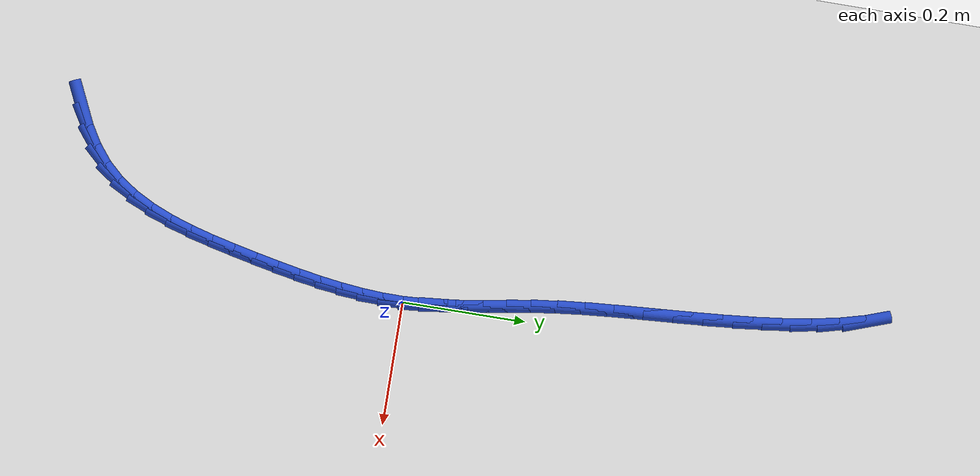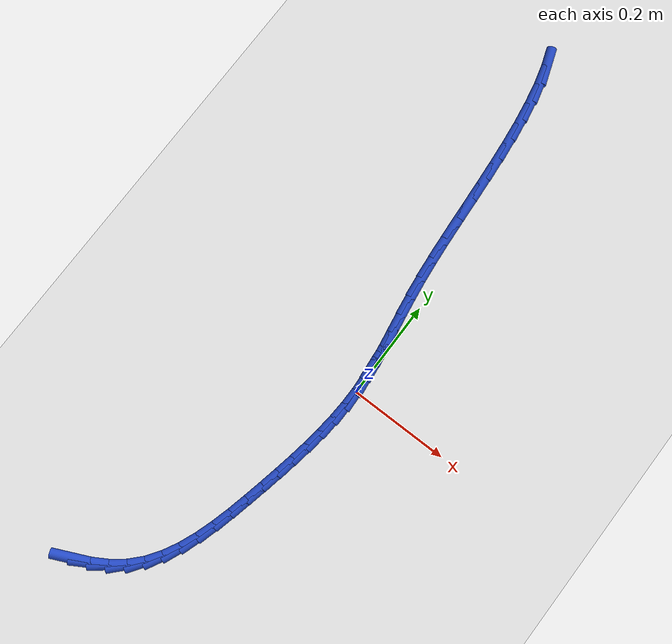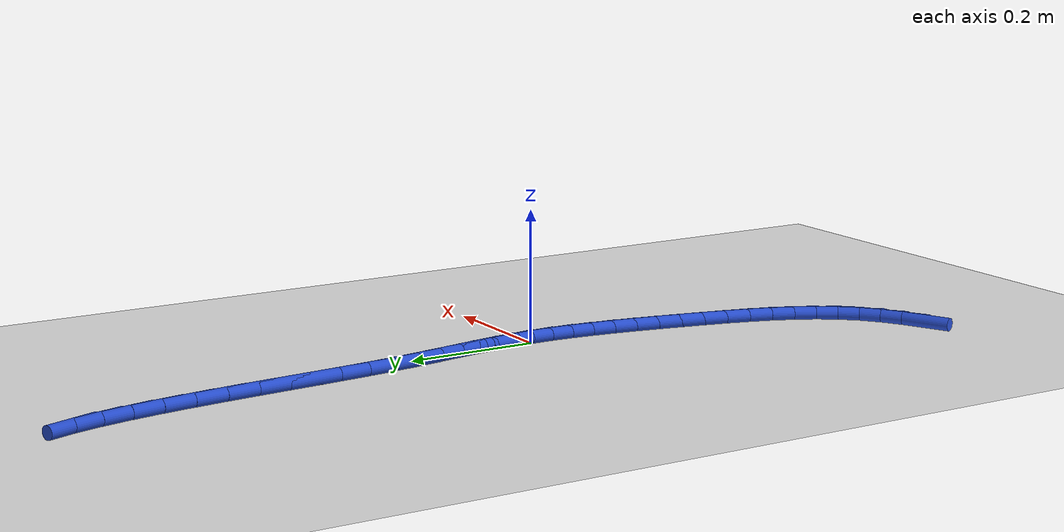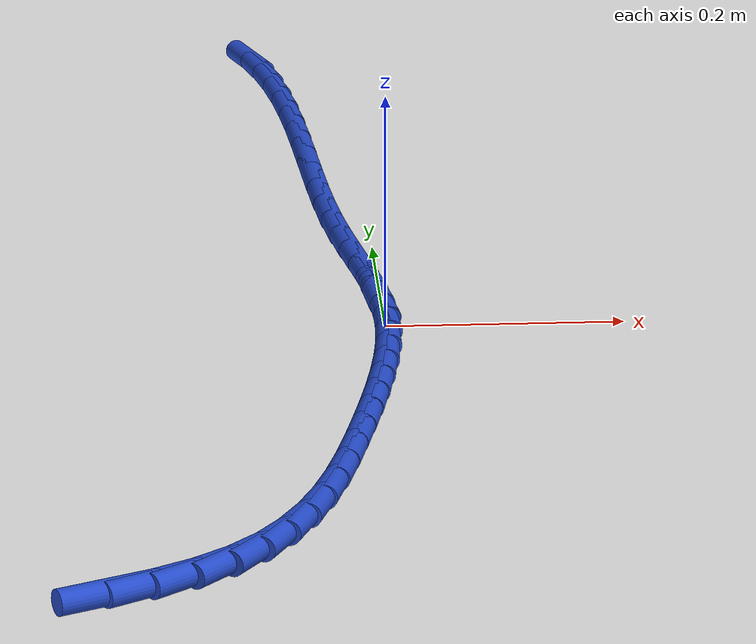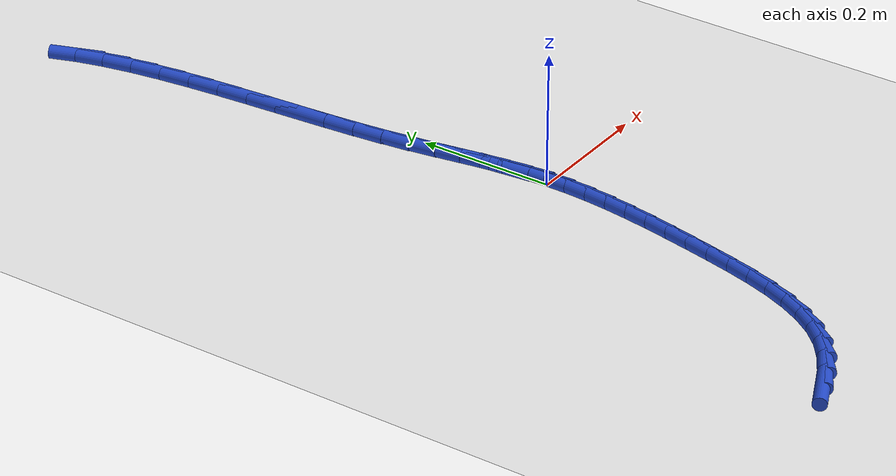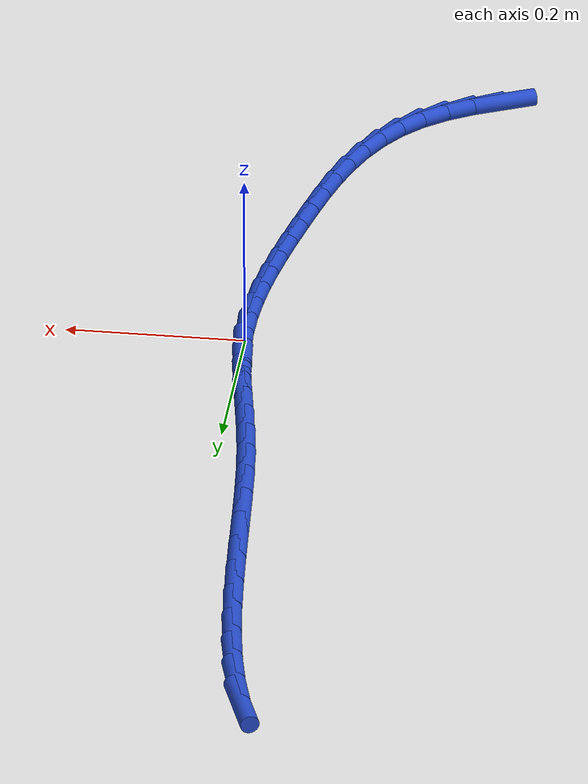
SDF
<sdf version="1.6">
 <world name="default">
  <model name="ground_plane">
   <static>1</static>
   <link name="link">
    <collision name="collision">
     <geometry><plane><normal>0 0 1</normal><size>100 100</size></plane></geometry>
     <surface><friction><ode><mu>100</mu><mu2>50</mu2></ode></friction></surface>
    </collision>
    <visual name="visual">
     <cast_shadows>0</cast_shadows>
     <geometry><plane><normal>0 0 1</normal><size>100 100</size></plane></geometry>
     <material>
      <script><uri>file://media/materials/scripts/gazebo.material</uri><name>Gazebo/WhiteGlow</name></script>
     </material>
    </visual>
   </link>
  </model>
  <model name="line">
   <link name="link_0">
    <pose>-6.938893903907228e-18 -6.938893903907228e-18 0.01 0 1.57 -1.5177969612141762</pose>
    <collision name="collision">
     <geometry><cylinder><radius>0.01</radius><length>0.08</length></cylinder></geometry>
    </collision>
    <visual name="visual">
     <material>
      <script><name>Gazebo/Blue</name><uri>file://media/materials/scripts/gazebo.material</uri></script>
     </material>
     <geometry><cylinder><radius>0.01</radius><length>0.08</length></cylinder></geometry>
    </visual>
   </link>
   <link name="link_1">
    <pose>-0.0017515799302486427 0.0330181235278298 0.01 0 1.57 -1.4679844494604115</pose>
    <collision name="collision">
     <geometry><cylinder><radius>0.01</radius><length>0.08</length></cylinder></geometry>
    </collision>
    <visual name="visual">
     <material>
      <script><name>Gazebo/Blue</name><uri>file://media/materials/scripts/gazebo.material</uri></script>
     </material>
     <geometry><cylinder><radius>0.01</radius><length>0.08</length></cylinder></geometry>
    </visual>
   </link>
   <link name="link_2">
    <pose>-0.005141537717968325 0.06587429909623252 0.01 0 1.57 -1.4324427644684208</pose>
    <collision name="collision">
     <geometry><cylinder><radius>0.01</radius><length>0.08</length></cylinder></geometry>
    </collision>
    <visual name="visual">
     <material>
      <script><name>Gazebo/Blue</name><uri>file://media/materials/scripts/gazebo.material</uri></script>
     </material>
     <geometry><cylinder><radius>0.01</radius><length>0.08</length></cylinder></geometry>
    </visual>
   </link>
   <link name="link_3">
    <pose>-0.009760357688056033 0.09904519484243182 0.01 0 1.57 -1.4120204576833575</pose>
    <collision name="collision">
     <geometry><cylinder><radius>0.01</radius><length>0.08</length></cylinder></geometry>
    </collision>
    <visual name="visual">
     <material>
      <script><name>Gazebo/Blue</name><uri>file://media/materials/scripts/gazebo.material</uri></script>
     </material>
     <geometry><cylinder><radius>0.01</radius><length>0.08</length></cylinder></geometry>
    </visual>
   </link>
   <link name="link_4">
    <pose>-0.015198524165408756 0.1330074789036513 0.01 0 1.57 -1.4063029760364756</pose>
    <collision name="collision">
     <geometry><cylinder><radius>0.01</radius><length>0.08</length></cylinder></geometry>
    </collision>
    <visual name="visual">
     <material>
      <script><name>Gazebo/Blue</name><uri>file://media/materials/scripts/gazebo.material</uri></script>
     </material>
     <geometry><cylinder><radius>0.01</radius><length>0.08</length></cylinder></geometry>
    </visual>
   </link>
   <link name="link_5">
    <pose>-0.021046521474923478 0.16823781941711455 0.01 0 1.57 -1.4139267796736377</pose>
    <collision name="collision">
     <geometry><cylinder><radius>0.01</radius><length>0.08</length></cylinder></geometry>
    </collision>
    <visual name="visual">
     <material>
      <script><name>Gazebo/Blue</name><uri>file://media/materials/scripts/gazebo.material</uri></script>
     </material>
     <geometry><cylinder><radius>0.01</radius><length>0.08</length></cylinder></geometry>
    </visual>
   </link>
   <link name="link_6">
    <pose>-0.02689483394149718 0.20521288452004527 0.01 0 1.57 -1.4329114620557057</pose>
    <collision name="collision">
     <geometry><cylinder><radius>0.01</radius><length>0.08</length></cylinder></geometry>
    </collision>
    <visual name="visual">
     <material>
      <script><name>Gazebo/Blue</name><uri>file://media/materials/scripts/gazebo.material</uri></script>
     </material>
     <geometry><cylinder><radius>0.01</radius><length>0.08</length></cylinder></geometry>
    </visual>
   </link>
   <link name="link_7">
    <pose>-0.03233394589002684 0.24440934234966696 0.01 0 1.57 -1.4600661538370552</pose>
    <collision name="collision">
     <geometry><cylinder><radius>0.01</radius><length>0.08</length></cylinder></geometry>
    </collision>
    <visual name="visual">
     <material>
      <script><name>Gazebo/Blue</name><uri>file://media/materials/scripts/gazebo.material</uri></script>
     </material>
     <geometry><cylinder><radius>0.01</radius><length>0.08</length></cylinder></geometry>
    </visual>
   </link>
   <link name="link_8">
    <pose>-0.036986519967477004 0.2862546953946999 0.01 0 1.57 -1.4832499196775513</pose>
    <collision name="collision">
     <geometry><cylinder><radius>0.01</radius><length>0.08</length></cylinder></geometry>
    </collision>
    <visual name="visual">
     <material>
      <script><name>Gazebo/Blue</name><uri>file://media/materials/scripts/gazebo.material</uri></script>
     </material>
     <geometry><cylinder><radius>0.01</radius><length>0.08</length></cylinder></geometry>
    </visual>
   </link>
   <link name="link_9">
    <pose>-0.040875637517500445 0.33056464156144416 0.01 0 1.57 -1.4968625900266792</pose>
    <collision name="collision">
     <geometry><cylinder><radius>0.01</radius><length>0.08</length></cylinder></geometry>
    </collision>
    <visual name="visual">
     <material>
      <script><name>Gazebo/Blue</name><uri>file://media/materials/scripts/gazebo.material</uri></script>
     </material>
     <geometry><cylinder><radius>0.01</radius><length>0.08</length></cylinder></geometry>
    </visual>
   </link>
   <link name="link_10">
    <pose>-0.04429580100148908 0.37674017113896774 0.01 0 1.57 -1.502369246488138</pose>
    <collision name="collision">
     <geometry><cylinder><radius>0.01</radius><length>0.08</length></cylinder></geometry>
    </collision>
    <visual name="visual">
     <material>
      <script><name>Gazebo/Blue</name><uri>file://media/materials/scripts/gazebo.material</uri></script>
     </material>
     <geometry><cylinder><radius>0.01</radius><length>0.08</length></cylinder></geometry>
    </visual>
   </link>
   <link name="link_11">
    <pose>-0.04754666259062296 0.42417440611230545 0.01 0 1.57 -1.500596032181259</pose>
    <collision name="collision">
     <geometry><cylinder><radius>0.01</radius><length>0.08</length></cylinder></geometry>
    </collision>
    <visual name="visual">
     <material>
      <script><name>Gazebo/Blue</name><uri>file://media/materials/scripts/gazebo.material</uri></script>
     </material>
     <geometry><cylinder><radius>0.01</radius><length>0.08</length></cylinder></geometry>
    </visual>
   </link>
   <link name="link_12">
    <pose>-0.05092787445608198 0.4722604684664915 0.01 0 1.57 -1.4917770333347309</pose>
    <collision name="collision">
     <geometry><cylinder><radius>0.01</radius><length>0.08</length></cylinder></geometry>
    </collision>
    <visual name="visual">
     <material>
      <script><name>Gazebo/Blue</name><uri>file://media/materials/scripts/gazebo.material</uri></script>
     </material>
     <geometry><cylinder><radius>0.01</radius><length>0.08</length></cylinder></geometry>
    </visual>
   </link>
   <link name="link_13">
    <pose>-0.054739088769046186 0.52039148018656 0.01 0 1.57 -1.4756262927464154</pose>
    <collision name="collision">
     <geometry><cylinder><radius>0.01</radius><length>0.08</length></cylinder></geometry>
    </collision>
    <visual name="visual">
     <material>
      <script><name>Gazebo/Blue</name><uri>file://media/materials/scripts/gazebo.material</uri></script>
     </material>
     <geometry><cylinder><radius>0.01</radius><length>0.08</length></cylinder></geometry>
    </visual>
   </link>
   <link name="link_14">
    <pose>-0.05927995770069553 0.5679605632575454 0.01 0 1.57 -1.4513218810831165</pose>
    <collision name="collision">
     <geometry><cylinder><radius>0.01</radius><length>0.08</length></cylinder></geometry>
    </collision>
    <visual name="visual">
     <material>
      <script><name>Gazebo/Blue</name><uri>file://media/materials/scripts/gazebo.material</uri></script>
     </material>
     <geometry><cylinder><radius>0.01</radius><length>0.08</length></cylinder></geometry>
    </visual>
   </link>
   <link name="link_15">
    <pose>-0.06485013342221006 0.6143608396644825 0.01 0 1.57 -1.417406883829234</pose>
    <collision name="collision">
     <geometry><cylinder><radius>0.01</radius><length>0.08</length></cylinder></geometry>
    </collision>
    <visual name="visual">
     <material>
      <script><name>Gazebo/Blue</name><uri>file://media/materials/scripts/gazebo.material</uri></script>
     </material>
     <geometry><cylinder><radius>0.01</radius><length>0.08</length></cylinder></geometry>
    </visual>
   </link>
   <link name="link_16">
    <pose>-0.07174926810476971 0.6589854313924051 0.01 0 1.57 -1.3715954360244975</pose>
    <collision name="collision">
     <geometry><cylinder><radius>0.01</radius><length>0.08</length></cylinder></geometry>
    </collision>
    <visual name="visual">
     <material>
      <script><name>Gazebo/Blue</name><uri>file://media/materials/scripts/gazebo.material</uri></script>
     </material>
     <geometry><cylinder><radius>0.01</radius><length>0.08</length></cylinder></geometry>
    </visual>
   </link>
   <link name="link_17">
    <pose>-0.08027701391955447 0.7012274604263474 0.01 0 1.57 -1.3104638574253555</pose>
    <collision name="collision">
     <geometry><cylinder><radius>0.01</radius><length>0.08</length></cylinder></geometry>
    </collision>
    <visual name="visual">
     <material>
      <script><name>Gazebo/Blue</name><uri>file://media/materials/scripts/gazebo.material</uri></script>
     </material>
     <geometry><cylinder><radius>0.01</radius><length>0.08</length></cylinder></geometry>
    </visual>
   </link>
   <link name="link_18">
    <pose>-0.09073302303774436 0.7404800487513445 0.01 0 1.57 -1.2290279747981148</pose>
    <collision name="collision">
     <geometry><cylinder><radius>0.01</radius><length>0.08</length></cylinder></geometry>
    </collision>
    <visual name="visual">
     <material>
      <script><name>Gazebo/Blue</name><uri>file://media/materials/scripts/gazebo.material</uri></script>
     </material>
     <geometry><cylinder><radius>0.01</radius><length>0.08</length></cylinder></geometry>
    </visual>
   </link>
   <link name="link_222">
    <pose>-0.22981109171115904 -0.5605472124838491 0.01 0 1.57 0.4347205577575068</pose>
    <collision name="collision">
     <geometry><cylinder><radius>0.01</radius><length>0.08</length></cylinder></geometry>
    </collision>
    <visual name="visual">
     <material>
      <script><name>Gazebo/Blue</name><uri>file://media/materials/scripts/gazebo.material</uri></script>
     </material>
     <geometry><cylinder><radius>0.01</radius><length>0.08</length></cylinder></geometry>
    </visual>
   </link>
   <link name="link_223">
    <pose>-0.19738865379702417 -0.5454919536160157 0.01 0 1.57 0.5373688415942952</pose>
    <collision name="collision">
     <geometry><cylinder><radius>0.01</radius><length>0.08</length></cylinder></geometry>
    </collision>
    <visual name="visual">
     <material>
      <script><name>Gazebo/Blue</name><uri>file://media/materials/scripts/gazebo.material</uri></script>
     </material>
     <geometry><cylinder><radius>0.01</radius><length>0.08</length></cylinder></geometry>
    </visual>
   </link>
   <link name="link_224">
    <pose>-0.16765084931902793 -0.5277724249428397 0.01 0 1.57 0.667398143767162</pose>
    <collision name="collision">
     <geometry><cylinder><radius>0.01</radius><length>0.08</length></cylinder></geometry>
    </collision>
    <visual name="visual">
     <material>
      <script><name>Gazebo/Blue</name><uri>file://media/materials/scripts/gazebo.material</uri></script>
     </material>
     <geometry><cylinder><radius>0.01</radius><length>0.08</length></cylinder></geometry>
    </visual>
   </link>
   <link name="link_225">
    <pose>-0.14113320169624993 -0.5068757781847844 0.01 0 1.57 0.8213450560477963</pose>
    <collision name="collision">
     <geometry><cylinder><radius>0.01</radius><length>0.08</length></cylinder></geometry>
    </collision>
    <visual name="visual">
     <material>
      <script><name>Gazebo/Blue</name><uri>file://media/materials/scripts/gazebo.material</uri></script>
     </material>
     <geometry><cylinder><radius>0.01</radius><length>0.08</length></cylinder></geometry>
    </visual>
   </link>
   <link name="link_226">
    <pose>-0.11831185107175402 -0.4823517757979088 0.01 0 1.57 0.9678062335303472</pose>
    <collision name="collision">
     <geometry><cylinder><radius>0.01</radius><length>0.08</length></cylinder></geometry>
    </collision>
    <visual name="visual">
     <material>
      <script><name>Gazebo/Blue</name><uri>file://media/materials/scripts/gazebo.material</uri></script>
     </material>
     <geometry><cylinder><radius>0.01</radius><length>0.08</length></cylinder></geometry>
    </visual>
   </link>
   <link name="link_227">
    <pose>-0.09905788330511468 -0.4543881190032857 0.01 0 1.57 1.0879535274555232</pose>
    <collision name="collision">
     <geometry><cylinder><radius>0.01</radius><length>0.08</length></cylinder></geometry>
    </collision>
    <visual name="visual">
     <material>
      <script><name>Gazebo/Blue</name><uri>file://media/materials/scripts/gazebo.material</uri></script>
     </material>
     <geometry><cylinder><radius>0.01</radius><length>0.08</length></cylinder></geometry>
    </visual>
   </link>
   <link name="link_228">
    <pose>-0.08288904017714191 -0.42354505722366587 0.01 0 1.57 1.1823237796540778</pose>
    <collision name="collision">
     <geometry><cylinder><radius>0.01</radius><length>0.08</length></cylinder></geometry>
    </collision>
    <visual name="visual">
     <material>
      <script><name>Gazebo/Blue</name><uri>file://media/materials/scripts/gazebo.material</uri></script>
     </material>
     <geometry><cylinder><radius>0.01</radius><length>0.08</length></cylinder></geometry>
    </visual>
   </link>
   <link name="link_229">
    <pose>-0.0693186343491479 -0.3903875097223412 0.01 0 1.57 1.2536174944631127</pose>
    <collision name="collision">
     <geometry><cylinder><radius>0.01</radius><length>0.08</length></cylinder></geometry>
    </collision>
    <visual name="visual">
     <material>
      <script><name>Gazebo/Blue</name><uri>file://media/materials/scripts/gazebo.material</uri></script>
     </material>
     <geometry><cylinder><radius>0.01</radius><length>0.08</length></cylinder></geometry>
    </visual>
   </link>
   <link name="link_230">
    <pose>-0.05785997848244449 -0.3554803957626022 0.01 0 1.57 1.3047922383940413</pose>
    <collision name="collision">
     <geometry><cylinder><radius>0.01</radius><length>0.08</length></cylinder></geometry>
    </collision>
    <visual name="visual">
     <material>
      <script><name>Gazebo/Blue</name><uri>file://media/materials/scripts/gazebo.material</uri></script>
     </material>
     <geometry><cylinder><radius>0.01</radius><length>0.08</length></cylinder></geometry>
    </visual>
   </link>
   <link name="link_231">
    <pose>-0.04802638523834447 -0.3193886346077428 0.01 0 1.57 1.3382292846899815</pose>
    <collision name="collision">
     <geometry><cylinder><radius>0.01</radius><length>0.08</length></cylinder></geometry>
    </collision>
    <visual name="visual">
     <material>
      <script><name>Gazebo/Blue</name><uri>file://media/materials/scripts/gazebo.material</uri></script>
     </material>
     <geometry><cylinder><radius>0.01</radius><length>0.08</length></cylinder></geometry>
    </visual>
   </link>
   <link name="link_232">
    <pose>-0.03933116727815967 -0.28267714552105383 0.01 0 1.57 1.3555722693699441</pose>
    <collision name="collision">
     <geometry><cylinder><radius>0.01</radius><length>0.08</length></cylinder></geometry>
    </collision>
    <visual name="visual">
     <material>
      <script><name>Gazebo/Blue</name><uri>file://media/materials/scripts/gazebo.material</uri></script>
     </material>
     <geometry><cylinder><radius>0.01</radius><length>0.08</length></cylinder></geometry>
    </visual>
   </link>
   <link name="link_233">
    <pose>-0.031292862027274826 -0.2459070688063535 0.01 0 1.57 1.3656572131180649</pose>
    <collision name="collision">
     <geometry><cylinder><radius>0.01</radius><length>0.08</length></cylinder></geometry>
    </collision>
    <visual name="visual">
     <material>
      <script><name>Gazebo/Blue</name><uri>file://media/materials/scripts/gazebo.material</uri></script>
     </material>
     <geometry><cylinder><radius>0.01</radius><length>0.08</length></cylinder></geometry>
    </visual>
   </link>
   <link name="link_234">
    <pose>-0.023705383847417758 -0.20944037055251216 0.01 0 1.57 1.3809389615562406</pose>
    <collision name="collision">
     <geometry><cylinder><radius>0.01</radius><length>0.08</length></cylinder></geometry>
    </collision>
    <visual name="visual">
     <material>
      <script><name>Gazebo/Blue</name><uri>file://media/materials/scripts/gazebo.material</uri></script>
     </material>
     <geometry><cylinder><radius>0.01</radius><length>0.08</length></cylinder></geometry>
    </visual>
   </link>
   <link name="link_235">
    <pose>-0.016768901686794263 -0.1733451816441702 0.01 0 1.57 1.4027545288904477</pose>
    <collision name="collision">
     <geometry><cylinder><radius>0.01</radius><length>0.08</length></cylinder></geometry>
    </collision>
    <visual name="visual">
     <material>
      <script><name>Gazebo/Blue</name><uri>file://media/materials/scripts/gazebo.material</uri></script>
     </material>
     <geometry><cylinder><radius>0.01</radius><length>0.08</length></cylinder></geometry>
    </visual>
   </link>
   <link name="link_236">
    <pose>-0.010716231797627785 -0.1376660198731863 0.01 0 1.57 1.4315490330806226</pose>
    <collision name="collision">
     <geometry><cylinder><radius>0.01</radius><length>0.08</length></cylinder></geometry>
    </collision>
    <visual name="visual">
     <material>
      <script><name>Gazebo/Blue</name><uri>file://media/materials/scripts/gazebo.material</uri></script>
     </material>
     <geometry><cylinder><radius>0.01</radius><length>0.08</length></cylinder></geometry>
    </visual>
   </link>
   <link name="link_237">
    <pose>-0.0057801904321417045 -0.10244740303141887 0.01 0 1.57 1.4678418605395915</pose>
    <collision name="collision">
     <geometry><cylinder><radius>0.01</radius><length>0.08</length></cylinder></geometry>
    </collision>
    <visual name="visual">
     <material>
      <script><name>Gazebo/Blue</name><uri>file://media/materials/scripts/gazebo.material</uri></script>
     </material>
     <geometry><cylinder><radius>0.01</radius><length>0.08</length></cylinder></geometry>
    </visual>
   </link>
   <link name="link_238">
    <pose>-0.0021935938425593693 -0.0677338489107256 0.01 0 1.57 1.512195394811753</pose>
    <collision name="collision">
     <geometry><cylinder><radius>0.01</radius><length>0.08</length></cylinder></geometry>
    </collision>
    <visual name="visual">
     <material>
      <script><name>Gazebo/Blue</name><uri>file://media/materials/scripts/gazebo.material</uri></script>
     </material>
     <geometry><cylinder><radius>0.01</radius><length>0.08</length></cylinder></geometry>
    </visual>
   </link>
   <link name="link_239">
    <pose>-0.0001892582811043762 -0.03356987530296683 0.01 0 1.57 1.5651586449656385</pose>
    <collision name="collision">
     <geometry><cylinder><radius>0.01</radius><length>0.08</length></cylinder></geometry>
    </collision>
    <visual name="visual">
     <material>
      <script><name>Gazebo/Blue</name><uri>file://media/materials/scripts/gazebo.material</uri></script>
     </material>
     <geometry><cylinder><radius>0.01</radius><length>0.08</length></cylinder></geometry>
    </visual>
   </link>
   <link name="link_240">
    <pose>-2.0816681711721685e-17 -1.942890293094024e-16 0.01 0 1.57 -1.5144162937877117</pose>
    <collision name="collision">
     <geometry><cylinder><radius>0.01</radius><length>0.08</length></cylinder></geometry>
    </collision>
    <visual name="visual">
     <material>
      <script><name>Gazebo/Blue</name><uri>file://media/materials/scripts/gazebo.material</uri></script>
     </material>
     <geometry><cylinder><radius>0.01</radius><length>0.08</length></cylinder></geometry>
    </visual>
   </link>
   <link name="link_241">
    <pose>-0.0018586352514697053 0.032931259206315774 0.01 0 1.57 -1.4431351463762645</pose>
    <collision name="collision">
     <geometry><cylinder><radius>0.01</radius><length>0.08</length></cylinder></geometry>
    </collision>
    <visual name="visual">
     <material>
      <script><name>Gazebo/Blue</name><uri>file://media/materials/scripts/gazebo.material</uri></script>
     </material>
     <geometry><cylinder><radius>0.01</radius><length>0.08</length></cylinder></geometry>
    </visual>
   </link>
   <link name="link_242">
    <pose>-0.0059979802877368465 0.06517938452412257 0.01 0 1.57 -1.479032110258045</pose>
    <collision name="collision">
     <geometry><cylinder><radius>0.01</radius><length>0.08</length></cylinder></geometry>
    </collision>
    <visual name="visual">
     <material>
      <script><name>Gazebo/Blue</name><uri>file://media/materials/scripts/gazebo.material</uri></script>
     </material>
     <geometry><cylinder><radius>0.01</radius><length>0.08</length></cylinder></geometry>
    </visual>
   </link>
  </model>
 </world>
</sdf>
